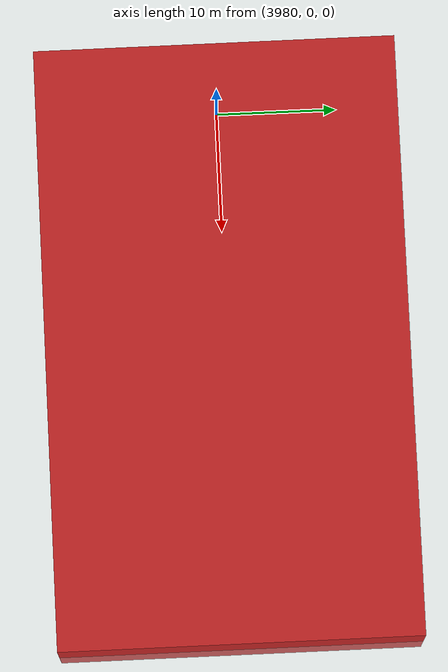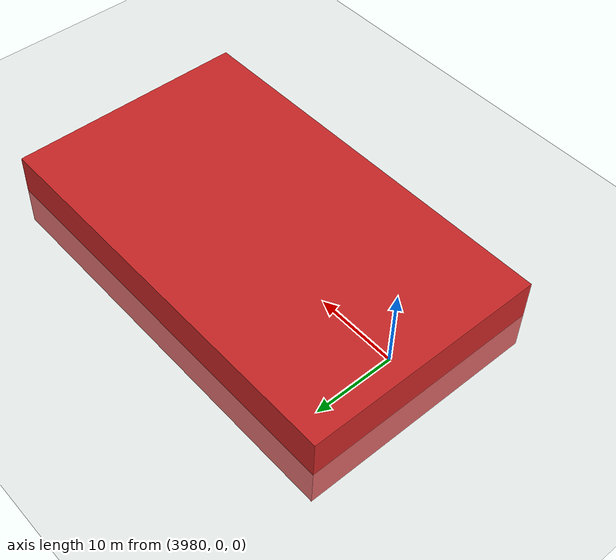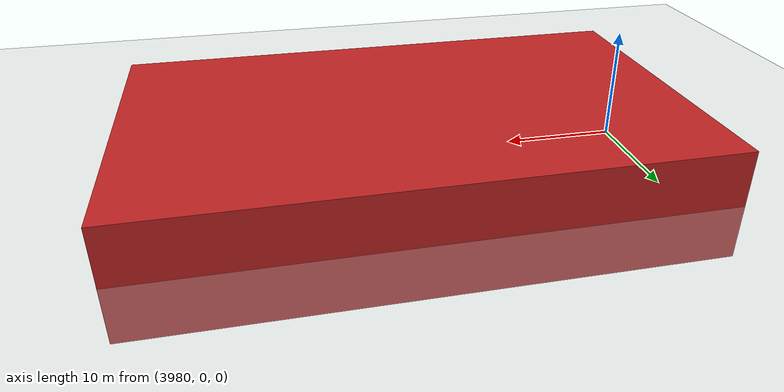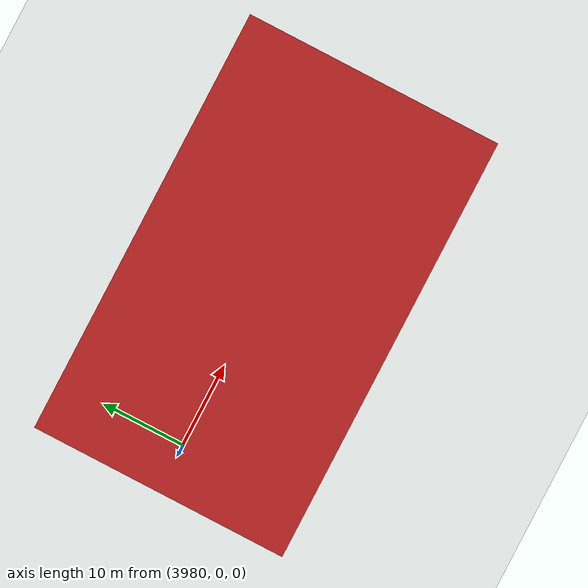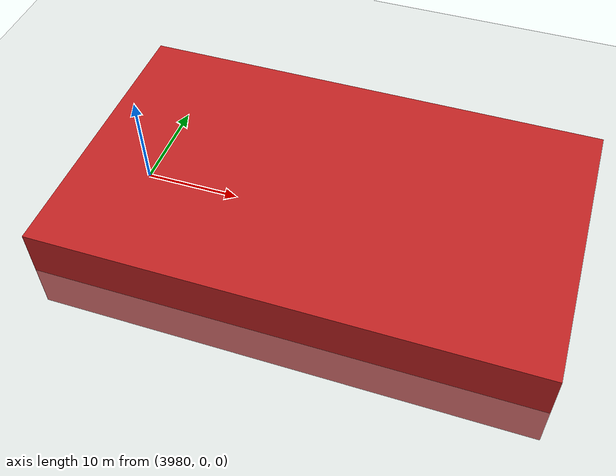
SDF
<?xml version="1.0" ?>
<sdf version="1.7">
  <world name="my_world">
    <scene>
      <ambient>1.0 1.0 1.0</ambient>
      <background>0.0 0.0 0.0</background>
    </scene>

    <light type="directional" name="sun">
      <cast_shadows>true</cast_shadows>
      <pose>0 0 10 0 0 0</pose>
      <diffuse>0.8 0.8 0.8 1</diffuse>
      <specular>0.2 0.2 0.2 1</specular>
      <attenuation>
        <range>1000</range>
        <constant>0.9</constant>
        <linear>0.01</linear>
        <quadratic>0.001</quadratic>
      </attenuation>
      <direction>-0.5 0.1 -0.9</direction>
    </light>

    <model name="ground_plane">
      <static>true</static>
      <link name="link">
        <collision name="collision">
          <geometry>
            <plane>
              <normal>0 0 1</normal>
              <size>10000 10000</size>
            </plane>
          </geometry>
          <surface>
            <contact>
               <collide_bitmask>0xffff</collide_bitmask>
            </contact>
            <friction>
              <ode>
                <mu>100</mu>
                <mu2>50</mu2>
              </ode>
            </friction>
          </surface>
        </collision>
        <visual name="visual">
          <cast_shadows>false</cast_shadows>
          <geometry>
            <plane>
              <normal>0 0 1</normal>
              <size>10000 10000</size>
            </plane>
          </geometry>
          <material>
            <script>
              <uri>file://media/materials/scripts/gazebo.material</uri>
              <name>Gazebo/Grey</name>
            </script>
          </material>
        </visual>
      </link>
    </model>

    <model name="target_box">
      <pose>4000 0 0 0 0 0</pose>
      <link name="big_red_box">
        <collision name="collision">
          <geometry>
            <box>
              <size>5 3 1</size>
            </box>
          </geometry>
        </collision>
        <visual name="visual">
          <geometry>
            <box>
              <size>50 30 10</size>
            </box>
          </geometry>
          <material>
            <script>
              <name>Gazebo/Red</name>
              <uri>file://media/materials/scripts/gazebo.material</uri>
            </script>
          </material>
        </visual>
      </link>
    </model>

    <gui fullscreen='0'>
      <camera name='user_camera'>
        <view_controller>orbit</view_controller>
        <projection_type>perspective</projection_type>
        <clip_near>0.10</clip_near>
        <clip_far>15000</clip_far>
      </camera>
    </gui>

  </world>
</sdf>
